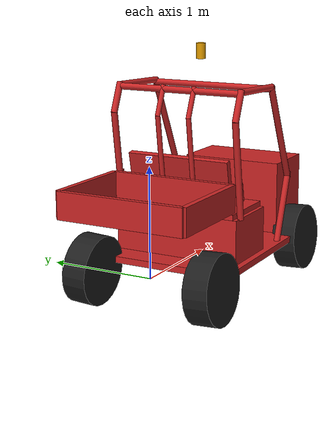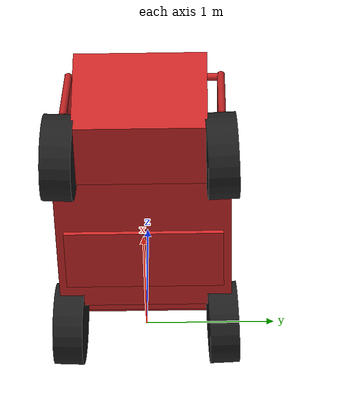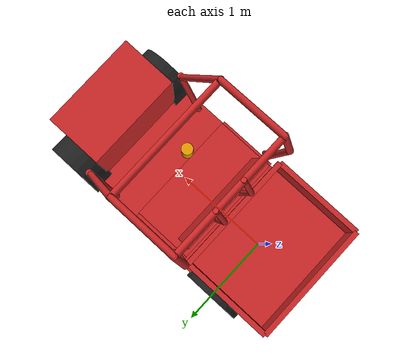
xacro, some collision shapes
<?xml version="1.0" ?>
<robot  xmlns:xacro="http://www.ros.org/wiki/xacro" name="polaris_ranger_ev">

  <xacro:arg name="gpu" default="false"/>
  <xacro:property name="gpu" value="$(arg gpu)" />

  <material name="Black">
    <color rgba="0.0 0.0 0.0 1.0"/>
  </material>
  <material name="Red">
    <color rgba="0.8 0.8 0.8 1.0"/>
  </material>
  <material name="White">
    <color rgba="1.0 1.0 1.0 1.0"/>
  </material>
  <material name="Blue">
    <color rgba="0.3 0.3 0.6 1.0"/>
  </material>

  <joint name="base_link_joint" type="fixed">
    <parent link="base_link_polaris"/>
    <child link="polaris_ranger_ev__chassis"/>
    <origin rpy="0  0       0" xyz="0.85  0   -0.32"/>
  </joint>

  <joint name="polaris_ranger_ev__front_left_steering_joint" type="revolute">
    <parent link="polaris_ranger_ev__chassis"/>
    <child link="polaris_ranger_ev__front_left_wheel_steering_block"/>
    <origin rpy="1.57079  0       0" xyz="1.03  0.5   0.32"/>
    <axis xyz="0  1  0"/>
    <limit effort="1000.0" lower="-0.8727" upper="0.8727" velocity="1.0"/>
  </joint>

  <transmission name="polaris_ranger_ev__front_left_steering_trans">
    <type>transmission_interface/SimpleTransmission</type>
    <actuator name="polaris_ranger_ev__front_left_steering_motor">
      <mechanicalReduction>1</mechanicalReduction>
    </actuator>
    <joint name="polaris_ranger_ev__front_left_steering_joint">
      <hardwareInterface>hardware_interface/PositionJointInterface</hardwareInterface>
    </joint>
</transmission>

  <joint name="polaris_ranger_ev__front_left_wheel_joint" type="continuous">
    <parent link="polaris_ranger_ev__front_left_wheel_steering_block"/>
    <child link="polaris_ranger_ev__front_left_wheel"/>
    <origin rpy="-3.09079  0       0" xyz="0   0  -0.1"/>
    <axis xyz="0.00000000e+00   8.30000000e-04   1.00000000e+00"/>
    <limit effort="0" velocity="100.0"/>
  </joint>

  <transmission name="polaris_ranger_ev__front_left_wheel_trans">
    <type>transmission_interface/SimpleTransmission</type>
    <actuator name="polaris_ranger_ev__front_left_wheel_motor">
      <mechanicalReduction>1</mechanicalReduction>
    </actuator>
    <joint name="polaris_ranger_ev__front_left_wheel_joint">
      <hardwareInterface>hardware_interface/PositionJointInterface</hardwareInterface>
    </joint>
</transmission>

  <joint name="polaris_ranger_ev__front_right_steering_joint" type="revolute">
    <parent link="polaris_ranger_ev__chassis"/>
    <child link="polaris_ranger_ev__front_right_wheel_steering_block"/>
    <origin rpy="1.57079  0       0" xyz="1.03 -0.5   0.32"/>
    <axis xyz="0  1  0"/>
    <limit effort="10000.0" lower="-0.8727" upper="0.8727" velocity="1.0"/>
  </joint>

  <transmission name="polaris_ranger_ev__front_right_steering_trans">
    <type>transmission_interface/SimpleTransmission</type>
    <actuator name="polaris_ranger_ev__front_right_steering_motor">
      <mechanicalReduction>1</mechanicalReduction>
    </actuator>
    <joint name="polaris_ranger_ev__front_right_steering_joint">
      <hardwareInterface>hardware_interface/PositionJointInterface</hardwareInterface>
    </joint>
  </transmission>

  <joint name="polaris_ranger_ev__front_right_wheel_joint" type="continuous">
    <parent link="polaris_ranger_ev__front_right_wheel_steering_block"/>
    <child link="polaris_ranger_ev__front_right_wheel"/>
    <origin rpy="-0.05079  0       0" xyz="0   0   0.1"/>
    <axis xyz="0.00000000e+00   8.30000000e-04  -1.00000000e+00"/>
    <limit effort="0" velocity="100.0"/>
  </joint>

  <transmission name="polaris_ranger_ev__front_right_wheel_trans">
    <type>transmission_interface/SimpleTransmission</type>
    <actuator name="polaris_ranger_ev__front_right_wheel_motor">
      <mechanicalReduction>1</mechanicalReduction>
    </actuator>
    <joint name="polaris_ranger_ev__front_right_wheel_joint">
      <hardwareInterface>hardware_interface/PositionJointInterface</hardwareInterface>
    </joint>
</transmission>

  <joint name="polaris_ranger_ev__rear_left_wheel_joint" type="continuous">
    <parent link="polaris_ranger_ev__chassis"/>
    <child link="polaris_ranger_ev__rear_left_wheel"/>
    <origin rpy="-1.52  0    0" xyz="-0.85  0.6   0.32"/>
    <axis xyz="0.00000000e+00   8.30000000e-04   1.00000000e+00"/>
    <limit effort="20000.0" velocity="100.0"/>
  </joint>

  <transmission name="polaris_ranger_ev__rear_left_wheel_trans">
    <type>transmission_interface/SimpleTransmission</type>
    <actuator name="polaris_ranger_ev__rear_left_wheel_motor">
      <mechanicalReduction>1</mechanicalReduction>
    </actuator>
    <joint name="polaris_ranger_ev__rear_left_wheel_joint">
      <hardwareInterface>hardware_interface/VelocityJointInterface</hardwareInterface>
    </joint>
</transmission>

  <joint name="polaris_ranger_ev__rear_right_wheel_joint" type="continuous">
    <parent link="polaris_ranger_ev__chassis"/>
    <child link="polaris_ranger_ev__rear_right_wheel"/>
    <origin rpy="1.52  0    0" xyz="-0.85    -0.6  0.32"/>
    <axis xyz="0.00000000e+00   8.30000000e-04  -1.00000000e+00"/>
    <limit effort="20000.0" velocity="100.0"/>
  </joint>

  <transmission name="polaris_ranger_ev__rear_right_wheel_trans">
    <type>transmission_interface/SimpleTransmission</type>
    <actuator name="polaris_ranger_ev__rear_right_wheel_motor">
      <mechanicalReduction>1</mechanicalReduction>
    </actuator>
    <joint name="polaris_ranger_ev__rear_right_wheel_joint">
      <hardwareInterface>hardware_interface/VelocityJointInterface</hardwareInterface>
    </joint>
</transmission>

<link name ="base_link_polaris"/>

  <link name="polaris_ranger_ev__chassis">
    <inertial>
      <mass value="720.0"/>
      <origin rpy="0  0  0" xyz="0.1  0   0.4"/>
      <inertia ixx="140" ixy="0.0" ixz="0.0" iyy="550" iyz="0.0" izz="550"/>
    </inertial>
    <collision>
      <origin rpy="0  0  0" xyz="0.1   0    0.37"/>
      <geometry>
        <box size="1.5 1.34 0.06"/>
      </geometry>
    </collision>
    <visual>
      <origin rpy="0  0  0" xyz="0.1   0    0.37"/>
      <geometry>
        <box size="1.5 1.34 0.06"/>
      </geometry>
    </visual>
    <collision>
      <origin rpy="0  0  0" xyz="-0.9  0   0.9"/>
      <geometry>
        <box size="0.9 1.2 0.01"/>
      </geometry>
    </collision>
    <visual>
      <origin rpy="0  0  0" xyz="-0.9  0   0.9"/>
      <geometry>
        <box size="0.9 1.2 0.01"/>
      </geometry>
    </visual>
    <collision>
      <origin rpy="0  0  0" xyz="-0.45     0       1.02499"/>
      <geometry>
        <box size="0.05 1.2 0.25"/>
      </geometry>
    </collision>
    <visual>
      <origin rpy="0  0  0" xyz="-0.45     0       1.02499"/>
      <geometry>
        <box size="0.05 1.2 0.25"/>
      </geometry>
    </visual>
    <collision>
      <origin rpy="0  0  0" xyz="-1.35     0       1.02499"/>
      <geometry>
        <box size="0.05 1.2 0.25"/>
      </geometry>
    </collision>
    <visual>
      <origin rpy="0  0  0" xyz="-1.35     0       1.02499"/>
      <geometry>
        <box size="0.05 1.2 0.25"/>
      </geometry>
    </visual>
    <collision>
      <origin rpy="0  0  0" xyz="-0.9      0.6      1.02499"/>
      <geometry>
        <box size="0.9 0.05 0.25"/>
      </geometry>
    </collision>
    <visual>
      <origin rpy="0  0  0" xyz="-0.9      0.6      1.02499"/>
      <geometry>
        <box size="0.9 0.05 0.25"/>
      </geometry>
    </visual>
    <collision>
      <origin rpy="0  0  0" xyz="-0.9     -0.6      1.02499"/>
      <geometry>
        <box size="0.9 0.05 0.25"/>
      </geometry>
    </collision>
    <visual>
      <origin rpy="0  0  0" xyz="-0.9     -0.6      1.02499"/>
      <geometry>
        <box size="0.9 0.05 0.25"/>
      </geometry>
    </visual>
    <collision>
      <origin rpy="0  0  0" xyz="-0.1   0    0.56"/>
      <geometry>
        <box size="0.6 1.22 0.50"/>
      </geometry>
    </collision>
    <visual>
      <origin rpy="0  0  0" xyz="-0.1   0    0.56"/>
      <geometry>
        <box size="0.6 1.22 0.50"/>
      </geometry>
    </visual>
    <collision>
      <origin rpy="0  0  0" xyz="-0.1   0    0.81"/>
      <geometry>
        <box size="0.6 1.15 0.1"/>
      </geometry>
    </collision>
    <visual>
      <origin rpy="0  0  0" xyz="-0.1   0    0.81"/>
      <geometry>
        <box size="0.6 1.15 0.1"/>
      </geometry>
    </visual>
    <collision>
      <origin rpy="0  -0.2  0" xyz="-0.3    0     1.125"/>
      <geometry>
        <box size="0.06 1.0 0.4"/>
      </geometry>
    </collision>
    <visual>
      <origin rpy="0  -0.2  0" xyz="-0.3    0     1.125"/>
      <geometry>
        <box size="0.06 1.0 0.4"/>
      </geometry>
    </visual>
    <collision>
      <origin rpy="0  0  0" xyz="1.05  0    0.7"/>
      <geometry>
        <box size="0.58 1.0 0.8"/>
      </geometry>
    </collision>
    <visual>
      <origin rpy="0  0  0" xyz="1.05  0    0.7"/>
      <geometry>
        <box size="0.58 1.0 0.8"/>
      </geometry>
    </visual>
    <collision>
      <origin rpy="0  -0.2  0" xyz="-0.3    0.61   1.055"/>
      <geometry>
        <cylinder length="0.17" radius="0.02"/>
      </geometry>
    </collision>
    <visual>
      <origin rpy="0  -0.2  0" xyz="-0.3    0.61   1.055"/>
      <geometry>
        <cylinder length="0.17" radius="0.02"/>
      </geometry>
    </visual>
    <collision>
      <origin rpy="0  -0.2  0" xyz="-0.3   -0.61   1.055"/>
      <geometry>
        <cylinder length="0.17" radius="0.02"/>
      </geometry>
    </collision>
    <visual>
      <origin rpy="0  -0.2  0" xyz="-0.3   -0.61   1.055"/>
      <geometry>
        <cylinder length="0.17" radius="0.02"/>
      </geometry>
    </visual>
    <collision>
      <origin rpy="3.14159  1.53159  3.14159" xyz="0    0.61  1.92"/>
      <geometry>
        <cylinder length="0.68" radius="0.03"/>
      </geometry>
    </collision>
    <visual>
      <origin rpy="3.14159  1.53159  3.14159" xyz="0    0.61  1.92"/>
      <geometry>
        <cylinder length="0.68" radius="0.03"/>
      </geometry>
    </visual>
    <collision>
      <origin rpy="3.14159  1.53159  3.14159" xyz="0   -0.61  1.92"/>
      <geometry>
        <cylinder length="0.68" radius="0.03"/>
      </geometry>
    </collision>
    <visual>
      <origin rpy="3.14159  1.53159  3.14159" xyz="0   -0.61  1.92"/>
      <geometry>
        <cylinder length="0.68" radius="0.03"/>
      </geometry>
    </visual>
    <collision>
      <origin rpy="1.57079  0       0" xyz="0.325  0     1.89"/>
      <geometry>
        <cylinder length="1.22" radius="0.03"/>
      </geometry>
    </collision>
    <visual>
      <origin rpy="1.57079  0       0" xyz="0.325  0     1.89"/>
      <geometry>
        <cylinder length="1.22" radius="0.03"/>
      </geometry>
    </visual>
    <collision>
      <origin rpy="1.57079  0       0" xyz="-0.33  0    1.92"/>
      <geometry>
        <cylinder length="1.22" radius="0.03"/>
      </geometry>
    </collision>
    <visual>
      <origin rpy="1.57079  0       0" xyz="-0.33  0    1.92"/>
      <geometry>
        <cylinder length="1.22" radius="0.03"/>
      </geometry>
    </visual>
    <collision>
      <origin rpy="0   -0.44  0" xyz="0.54  0.61  1.45"/>
      <geometry>
        <cylinder length="1.04" radius="0.03"/>
      </geometry>
    </collision>
    <visual>
      <origin rpy="0   -0.44  0" xyz="0.54  0.61  1.45"/>
      <geometry>
        <cylinder length="1.04" radius="0.03"/>
      </geometry>
    </visual>
    <collision>
      <origin rpy="0   -0.44  0" xyz="0.54 -0.61  1.45"/>
      <geometry>
        <cylinder length="1.04" radius="0.03"/>
      </geometry>
    </collision>
    <visual>
      <origin rpy="0   -0.44  0" xyz="0.54 -0.61  1.45"/>
      <geometry>
        <cylinder length="1.04" radius="0.03"/>
      </geometry>
    </visual>
    <collision>
      <origin rpy="0    0.35  0" xyz="0.64 -0.61  0.7"/>
      <geometry>
        <cylinder length="0.72" radius="0.03"/>
      </geometry>
    </collision>
    <visual>
      <origin rpy="0    0.35  0" xyz="0.64 -0.61  0.7"/>
      <geometry>
        <cylinder length="0.72" radius="0.03"/>
      </geometry>
    </visual>
    <collision>
      <origin rpy="0    0.35  0" xyz="0.64  0.61  0.7"/>
      <geometry>
        <cylinder length="0.72" radius="0.03"/>
      </geometry>
    </collision>
    <visual>
      <origin rpy="0    0.35  0" xyz="0.64  0.61  0.7"/>
      <geometry>
        <cylinder length="0.72" radius="0.03"/>
      </geometry>
    </visual>
    <collision>
      <origin rpy="0   -0.14  0" xyz="-0.37  0.61  1.25"/>
      <geometry>
        <cylinder length="0.90" radius="0.03"/>
      </geometry>
    </collision>
    <visual>
      <origin rpy="0   -0.14  0" xyz="-0.37  0.61  1.25"/>
      <geometry>
        <cylinder length="0.90" radius="0.03"/>
      </geometry>
    </visual>
    <collision>
      <origin rpy="0   -0.14  0" xyz="-0.37 -0.61  1.25"/>
      <geometry>
        <cylinder length="0.90" radius="0.03"/>
      </geometry>
    </collision>
    <visual>
      <origin rpy="0   -0.14  0" xyz="-0.37 -0.61  1.25"/>
      <geometry>
        <cylinder length="0.90" radius="0.03"/>
      </geometry>
    </visual>
    <collision>
      <origin rpy="0   -0.14  0" xyz="-0.37   0.155  1.25"/>
      <geometry>
        <cylinder length="0.90" radius="0.023"/>
      </geometry>
    </collision>
     <visual>
      <origin rpy="0   -0.14  0" xyz="-0.37   0.155  1.25"/>
      <geometry>
        <cylinder length="0.90" radius="0.023"/>
      </geometry>
    </visual>
    <collision>
      <origin rpy="0   -0.14  0" xyz="-0.37  -0.155  1.25"/>
      <geometry>
        <cylinder length="0.90" radius="0.023"/>
      </geometry>
    </collision>
    <visual>
      <origin rpy="0   -0.14  0" xyz="-0.37  -0.155  1.25"/>
      <geometry>
        <cylinder length="0.90" radius="0.023"/>
      </geometry>
    </visual>
    <collision>
      <origin rpy="0   0.4  0" xyz="-0.38  0.61  1.82"/>
      <geometry>
        <cylinder length="0.29" radius="0.03"/>
      </geometry>
    </collision>
    <visual>
      <origin rpy="0   0.4  0" xyz="-0.38  0.61  1.82"/>
      <geometry>
        <cylinder length="0.29" radius="0.03"/>
      </geometry>
    </visual>
    <collision>
      <origin rpy="0   0.4  0" xyz="-0.38 -0.61  1.82"/>
      <geometry>
        <cylinder length="0.29" radius="0.03"/>
      </geometry>
    </collision>
    <visual>
      <origin rpy="0   0.4  0" xyz="-0.38 -0.61  1.82"/>
      <geometry>
        <cylinder length="0.29" radius="0.03"/>
      </geometry>
    </visual>
    <collision>
      <origin rpy="0   0.4  0" xyz="-0.38   0.155  1.82"/>
      <geometry>
        <cylinder length="0.29" radius="0.023"/>
      </geometry>
    </collision>
    <visual>
      <origin rpy="0   0.4  0" xyz="-0.38   0.155  1.82"/>
      <geometry>
        <cylinder length="0.29" radius="0.023"/>
      </geometry>
    </visual>
    <collision>
      <origin rpy="0   0.4  0" xyz="-0.38  -0.155  1.82"/>
      <geometry>
        <cylinder length="0.29" radius="0.023"/>
      </geometry>
    </collision>
    <visual>
      <origin rpy="0   0.4  0" xyz="-0.38  -0.155  1.82"/>
      <geometry>
        <cylinder length="0.29" radius="0.023"/>
      </geometry>
    </visual>
  </link>

  <gazebo reference="polaris_ranger_ev__chassis">
      <material>Gazebo/Red</material>
    </gazebo>

  <link name="polaris_ranger_ev__rear_left_wheel">
    <inertial>
      <mass value="12"/>
      <origin rpy="0  0  0" xyz="0  0  0"/>
      <inertia ixx="0.5" ixy="0.0" ixz="0.0" iyy="0.5" iyz="0.0" izz="1.0"/>
    </inertial>
    <collision>
      <origin rpy="0  0  0" xyz="0  0  0"/><material name="Black">
    <color rgba="0.0 0.0 0.0 1.0"/>
  </material>
  <material name="Red">
    <color rgba="0.8 0.0 0.0 1.0"/>
  </material>
  <material name="White">
    <color rgba="1.0 1.0 1.0 1.0"/>
  </material>
  <material name="Blue">
    <color rgba="0.0 0.0 0.8 1.0"/>
</material>
      <geometry>
        <cylinder length="0.23" radius="0.32"/>
      </geometry>
    </collision>
    <visual>
      <origin rpy="0  0  0" xyz="0  0  0"/>
      <geometry>
        <cylinder length="0.23" radius="0.32"/>
      </geometry>
    </visual>
  </link>

  <gazebo reference="polaris_ranger_ev__rear_left_wheel">
      <mu1>0.7</mu1>
      <material>Gazebo/Black</material>
    </gazebo>

  <link name="polaris_ranger_ev__rear_right_wheel">
    <inertial>
      <mass value="12"/>
      <origin rpy="0  0  0" xyz="0  0  0"/>
      <inertia ixx="0.5" ixy="0.0" ixz="0.0" iyy="0.5" iyz="0.0" izz="1.0"/>
    </inertial>
    <collision>
      <origin rpy="0  0  0" xyz="0  0  0"/>
      <geometry>
        <cylinder length="0.23" radius="0.32"/>
      </geometry>
    </collision>
    <visual>
      <origin rpy="0  0  0" xyz="0  0  0"/>
      <geometry>
        <cylinder length="0.23" radius="0.32"/>
      </geometry>
    </visual>
  </link>

  <gazebo reference="polaris_ranger_ev__rear_right_wheel">
      <mu1>0.7</mu1>
      <material>Gazebo/Black</material>
    </gazebo>

  <link name="polaris_ranger_ev__front_right_wheel">
    <inertial>
      <mass value="12"/>
      <origin rpy="0  0  0" xyz="0  0  0"/>
      <inertia ixx="0.5" ixy="0.0" ixz="0.0" iyy="0.5" iyz="0.0" izz="1.0"/>
    </inertial>
    <collision>
      <origin rpy="0  0  0" xyz="0  0  0"/>
      <geometry>
        <cylinder length="0.23" radius="0.32"/>
      </geometry>
    </collision>
    <visual>
      <origin rpy="0  0  0" xyz="0  0  0"/>
      <geometry>
        <cylinder length="0.23" radius="0.32"/>
      </geometry>
    </visual>
  </link>

  <gazebo reference="polaris_ranger_ev__front_right_wheel">
      <mu1>0.7</mu1>
      <material>Gazebo/Black</material>
    </gazebo>

  <link name="polaris_ranger_ev__front_right_wheel_steering_block">
    <inertial>
      <mass value="1"/>
      <origin rpy="0  0  0" xyz="0  0  0"/>
      <inertia ixx="1.0" ixy="0.0" ixz="0.0" iyy="1.0" iyz="0.0" izz="1.0"/>
    </inertial>
    <collision name="polaris_ranger_ev__front_right_wheel_steering_block_collision">
      <origin rpy="0  0  0" xyz="0  0  0"/>
      <geometry>
        <cylinder length="0.01" radius="0.05"/>
      </geometry>
    </collision>
    <visual name="polaris_ranger_ev__front_right_wheel_steering_block_vis">
      <origin rpy="0  0  0" xyz="0  0  0"/>
      <geometry>
        <cylinder length="0.01" radius="0.05"/>
      </geometry>
    </visual>
  </link>
  <link name="polaris_ranger_ev__front_left_wheel">
    <inertial>
      <mass value="12"/>
      <origin rpy="0  0  0" xyz="0  0  0"/>
      <inertia ixx="0.5" ixy="0.0" ixz="0.0" iyy="0.5" iyz="0.0" izz="1.0"/>
    </inertial>
    <collision>
      <origin rpy="0  0  0" xyz="0  0  0"/>
      <geometry>
        <cylinder length="0.23" radius="0.32"/>
      </geometry>
    </collision>
    <visual>
      <origin rpy="0  0  0" xyz="0  0  0"/>
      <geometry>
        <cylinder length="0.23" radius="0.32"/>
      </geometry>
    </visual>
  </link>

  <gazebo reference="polaris_ranger_ev__front_left_wheel">
      <mu1>0.7</mu1>
      <material>Gazebo/Black</material>
    </gazebo>

  <link name="polaris_ranger_ev__front_left_wheel_steering_block">
    <inertial>
      <mass value="1"/>
      <origin rpy="0  0  0" xyz="0  0  0"/>
      <inertia ixx="1.0" ixy="0.0" ixz="0.0" iyy="1.0" iyz="0.0" izz="1.0"/>
    </inertial>
    <collision name="polaris_ranger_ev__front_left_wheel_steering_block_collision">
      <origin rpy="0  0  0" xyz="0  0  0"/>
      <geometry>
        <cylinder length="0.01" radius="0.05"/>
      </geometry>
    </collision>
    <visual name="polaris_ranger_ev__front_left_wheel_steering_block_visual">
      <origin rpy="0  0  0" xyz="0  0  0"/>
      <geometry>
        <cylinder length="0.01" radius="0.05"/>
      </geometry>
    </visual>
  </link>

  <gazebo reference="base_link_polaris">
    <gravity>true</gravity>
    <sensor name="imu_sensor" type="imu">
      <always_on>true</always_on>
      <update_rate>100</update_rate>
      <visualize>true</visualize>
      <topic>imu</topic>
      <plugin filename="libgazebo_ros_imu_sensor.so" name="imu_plugin">
        <topicName>imu</topicName>
        <bodyName>imu_link</bodyName>
        <updateRateHZ>10.0</updateRateHZ>
        <gaussianNoise>0.0</gaussianNoise>
        <xyzOffset>0 0 0</xyzOffset>
        <rpyOffset>0 0 0</rpyOffset>
        <frameName>imu_link</frameName>
      </plugin>
      <pose>0.63 0.08 1.55 0 0 0</pose>
    </sensor>
  </gazebo>

  <gazebo>
    <plugin name="novatel_gps_sim" filename="libhector_gazebo_ros_gps.so">
      <alwaysOn>1</alwaysOn>
      <updateRate>10.0</updateRate>
      <bodyName>base_link_polaris</bodyName>
      <topicName>fix</topicName>
      <velocityTopicName>fix_velocity</velocityTopicName>
      <drift>5.0 5.0 5.0</drift>
      <gaussianNoise>0.1 0.1 0.1</gaussianNoise>
      <velocityDrift>0 0 0</velocityDrift>
      <velocityGaussianNoise>0.1 0.1 0.1</velocityGaussianNoise>
      <pose>0.63 0.08 1.55 0 0 0</pose>
    </plugin>
  </gazebo>

 <xacro:include filename="$(find velodyne_description)/urdf/HDL-32E.urdf.xacro"/>
  <HDL-32E parent="base_link_polaris" name="velodyne2" topic="/velodyne_points2" hz="10" samples="220" gpu="false">
    <origin xyz="0.95 0 1.84" rpy="0 0 0" />
  </HDL-32E>

  <gazebo>
    <plugin name="gazebo_ros_control" filename="libgazebo_ros_control.so">
      <robotNamespace>/</robotNamespace>
      <legacyModeNS>true</legacyModeNS>
    </plugin>
  </gazebo>

</robot>

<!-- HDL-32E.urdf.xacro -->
<robot xmlns:xacro="http://www.ros.org/wiki/xacro" name="HDL-32E">
  <xacro:property name="M_PI" value="3.1415926535897931" />
  <xacro:macro name="HDL-32E" params="*origin parent:=base_link name:=velodyne tf_prefix:='' topic:=/velodyne_points organize_cloud:=false hz:=10 lasers:=32 samples:=2187 collision_range:=0.3 min_range:=0.9 max_range:=130.0 noise:=0.008 min_angle:=-${M_PI} max_angle:=${M_PI} gpu:=false">

    <joint name="${name}_base_mount_joint" type="fixed">
      <xacro:insert_block name="origin" />
      <parent link="${parent}"/>
      <child link="${name}_base_link"/>
    </joint>

    <link name="${name}_base_link">
      <inertial>
        <mass value="1.0"/>
        <origin xyz="0 0 0.07212"/>
        <inertia ixx="${(1.0 * (3.0*0.04267*0.04267 + 0.14424*0.14424)) / 12.0}" ixy="0" ixz="0"
          iyy="${(1.0 * (3.0*0.04267*0.04267 + 0.14424*0.14424)) / 12.0}" iyz="0"
          izz="${0.5 * 1.0 * (0.04267*0.04267)}"/>
      </inertial>
      <visual>
        <geometry>
          <mesh filename="package://velodyne_description/meshes/HDL32E_base.dae" />
        </geometry>
      </visual>
      <collision>
        <origin rpy="0 0 0" xyz="0 0 0.07212"/>
        <geometry>
          <cylinder radius="0.04267" length="0.14424"/>
        </geometry>
      </collision>
    </link>

    <joint name="${name}_base_scan_joint" type="fixed" >
      <origin xyz="0 0 0.09081" rpy="0 0 0" />
      <parent link="${name}_base_link" />
      <child link="${name}"/>
    </joint>

    <link name="${name}">
      <inertial>
        <mass value="0.01"/>
        <origin xyz="0 0 0"/>
        <inertia ixx="1e-7" ixy="0" ixz="0" iyy="1e-7" iyz="0" izz="1e-7"/>
      </inertial>
      <visual>
        <origin xyz="0 0 -0.09081" rpy="0 0 0" />
        <geometry>
          <mesh filename="package://velodyne_description/meshes/HDL32E_scan.dae" />
        </geometry>
      </visual>
      <collision>
        <geometry>
          <sphere radius="0"/>
        </geometry>
      </collision>
    </link>

    <!-- Gazebo requires the velodyne_gazebo_plugins package -->
    <gazebo reference="${name}">
      <xacro:if value="${gpu}">
        <sensor type="gpu_ray" name="${name}-HDL32E">
          <pose>0 0 0 0 0 0</pose>
          <visualize>false</visualize>
          <update_rate>${hz}</update_rate>
          <ray>
            <scan>
              <horizontal>
                <samples>${samples}</samples>
                <resolution>1</resolution>
                <min_angle>${min_angle}</min_angle>
                <max_angle>${max_angle}</max_angle>
              </horizontal>
              <vertical>
                <samples>${lasers}</samples>
                <resolution>1</resolution>
                <min_angle>-${5.0*M_PI/180.0}</min_angle>
                <max_angle> ${85.0*M_PI/180.0}</max_angle>
              </vertical>
            </scan>
            <range>
              <min>${collision_range}</min>
              <max>${max_range+1}</max>
              <resolution>0.001</resolution>
            </range>
            <noise>
              <type>gaussian</type>
              <mean>0.0</mean>
              <stddev>0.0</stddev>
            </noise>
          </ray>
          <plugin name="gazebo_ros_laser_controller" filename="libgazebo_ros_velodyne_laser.so">
            <ros>
              <namespace>/${name}</namespace>
              <remapping>~/out:=${topic}</remapping>
            </ros>
            <tf_prefix>${tf_prefix}</tf_prefix>
            <frame_name>${name}</frame_name>
            <organize_cloud>${organize_cloud}</organize_cloud>
            <min_range>${min_range}</min_range>
            <max_range>${max_range}</max_range>
            <gaussian_noise>${noise}</gaussian_noise>
          </plugin>
        </sensor>
      </xacro:if>
      <xacro:unless value="${gpu}">
        <sensor type="ray" name="${name}-HDL32E">
          <pose>0 0 0 0 0 0</pose>
          <visualize>false</visualize>
          <update_rate>${hz}</update_rate>
          <ray>
            <scan>
              <horizontal>
                <samples>${samples}</samples>
                <resolution>1</resolution>
                <min_angle>${min_angle}</min_angle>
                <max_angle>${max_angle}</max_angle>
              </horizontal>
              <vertical>
                <samples>${lasers}</samples>
                <resolution>1</resolution>
                <min_angle>-${5.0*M_PI/180.0}</min_angle>
                <max_angle> ${85.0*M_PI/180.0}</max_angle>
              </vertical>
            </scan>
            <range>
              <min>${collision_range}</min>
              <max>${max_range+1}</max>
              <resolution>0.001</resolution>
            </range>
            <noise>
              <type>gaussian</type>
              <mean>0.0</mean>
              <stddev>0.0</stddev>
            </noise>
          </ray>
          <plugin name="gazebo_ros_laser_controller" filename="libgazebo_ros_velodyne_laser.so">
            <ros>
              <namespace>/${name}</namespace>
              <remapping>~/out:=${topic}</remapping>
            </ros>
            <tf_prefix>${tf_prefix}</tf_prefix>
            <frame_name>${name}</frame_name>
            <organize_cloud>${organize_cloud}</organize_cloud>
            <min_range>${min_range}</min_range>
            <max_range>${max_range}</max_range>
            <gaussian_noise>${noise}</gaussian_noise>
          </plugin>
        </sensor>
      </xacro:unless>
    </gazebo>

  </xacro:macro>
</robot>
